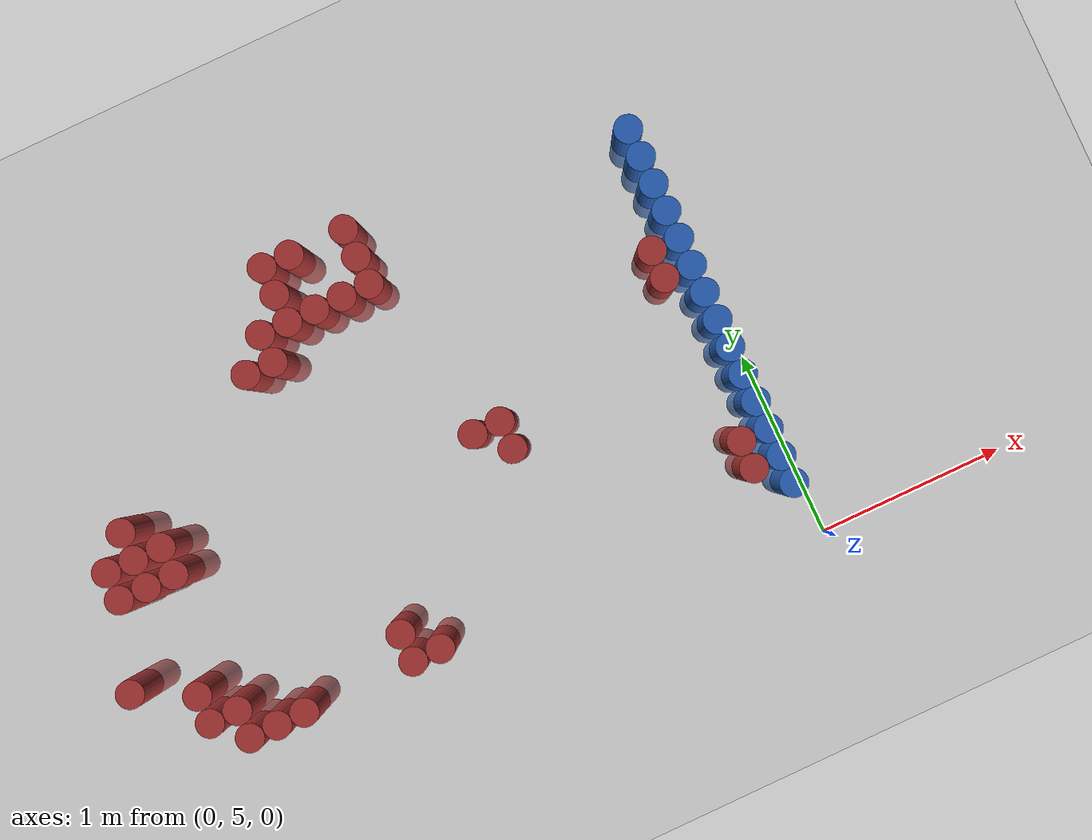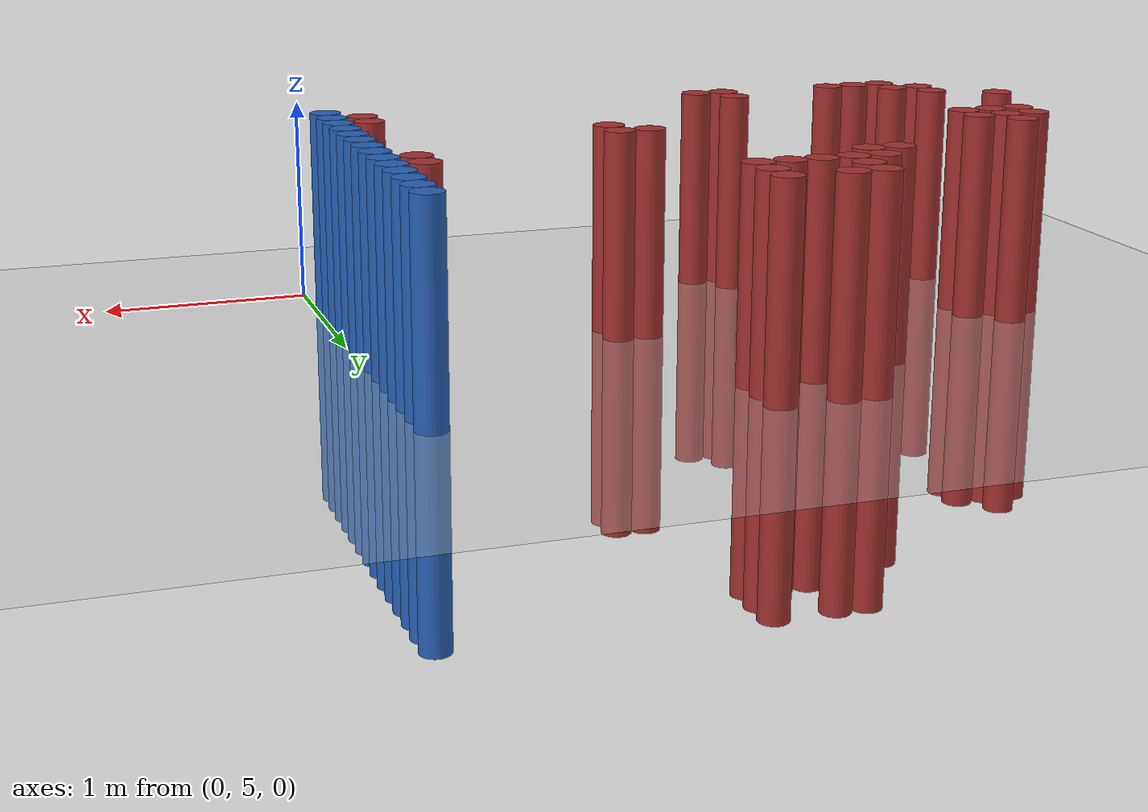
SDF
<sdf version="1.6">
 <world name="default">
  <model name="ground_plane">
   <static>1</static>
   <link name="link">
    <collision name="collision">
     <geometry><plane><normal>0 0 1</normal><size>100 100</size></plane></geometry>
     <surface><friction><ode><mu>100</mu><mu2>50</mu2></ode></friction></surface>
    </collision>
    <visual name="visual">
     <cast_shadows>0</cast_shadows>
     <geometry><plane><normal>0 0 1</normal><size>100 100</size></plane></geometry>
     <material>
      <script><uri>file://media/materials/scripts/gazebo.material</uri><name>Gazebo/Grey</name></script>
     </material>
    </visual>
   </link>
  </model>
  <model name="unit_cylinder_149">
   <static>1</static>
   <pose>-3.525000 5.775000 0.000000 0.000000 0.000000 0.000000</pose>
   <link name="link">
    <inertial>
     <mass>1</mass>
     <inertia><ixx>0.145833</ixx><ixy>0</ixy><ixz>0</ixz><iyy>0.145833</iyy><iyz>0</iyz><izz>0.125</izz></inertia>
    </inertial>
    <collision name="collision">
     <geometry><cylinder><radius>0.075000</radius><length>2</length></cylinder></geometry>
    </collision>
    <visual name="visual">
     <geometry><cylinder><radius>0.075000</radius><length>2</length></cylinder></geometry>
     <material>
      <ambient>0.648000 0.192000 0.192000 1</ambient>
      <diffuse>0.648000 0.192000 0.192000 1</diffuse>
     </material>
     <material>
      <script><name>Gazebo/Grey</name><uri>file://media/materials/scripts/gazebo.material</uri></script>
     </material>
    </visual>
   </link>
  </model>
  <model name="unit_cylinder_153">
   <static>1</static>
   <pose>-3.375000 6.225000 0.000000 0.000000 0.000000 0.000000</pose>
   <link name="link">
    <inertial>
     <mass>1</mass>
     <inertia><ixx>0.145833</ixx><ixy>0</ixy><ixz>0</ixz><iyy>0.145833</iyy><iyz>0</iyz><izz>0.125</izz></inertia>
    </inertial>
    <collision name="collision">
     <geometry><cylinder><radius>0.075000</radius><length>2</length></cylinder></geometry>
    </collision>
    <visual name="visual">
     <geometry><cylinder><radius>0.075000</radius><length>2</length></cylinder></geometry>
     <material>
      <ambient>0.648000 0.192000 0.192000 1</ambient>
      <diffuse>0.648000 0.192000 0.192000 1</diffuse>
     </material>
     <material>
      <script><name>Gazebo/Grey</name><uri>file://media/materials/scripts/gazebo.material</uri></script>
     </material>
    </visual>
   </link>
  </model>
  <model name="unit_cylinder_154">
   <static>1</static>
   <pose>-3.375000 6.375000 0.000000 0.000000 0.000000 0.000000</pose>
   <link name="link">
    <inertial>
     <mass>1</mass>
     <inertia><ixx>0.145833</ixx><ixy>0</ixy><ixz>0</ixz><iyy>0.145833</iyy><iyz>0</iyz><izz>0.125</izz></inertia>
    </inertial>
    <collision name="collision">
     <geometry><cylinder><radius>0.075000</radius><length>2</length></cylinder></geometry>
    </collision>
    <visual name="visual">
     <geometry><cylinder><radius>0.075000</radius><length>2</length></cylinder></geometry>
     <material>
      <ambient>0.648000 0.192000 0.192000 1</ambient>
      <diffuse>0.648000 0.192000 0.192000 1</diffuse>
     </material>
     <material>
      <script><name>Gazebo/Grey</name><uri>file://media/materials/scripts/gazebo.material</uri></script>
     </material>
    </visual>
   </link>
  </model>
  <model name="unit_cylinder_156">
   <static>1</static>
   <pose>-3.225000 5.475000 0.000000 0.000000 0.000000 0.000000</pose>
   <link name="link">
    <inertial>
     <mass>1</mass>
     <inertia><ixx>0.145833</ixx><ixy>0</ixy><ixz>0</ixz><iyy>0.145833</iyy><iyz>0</iyz><izz>0.125</izz></inertia>
    </inertial>
    <collision name="collision">
     <geometry><cylinder><radius>0.075000</radius><length>2</length></cylinder></geometry>
    </collision>
    <visual name="visual">
     <geometry><cylinder><radius>0.075000</radius><length>2</length></cylinder></geometry>
     <material>
      <ambient>0.648000 0.192000 0.192000 1</ambient>
      <diffuse>0.648000 0.192000 0.192000 1</diffuse>
     </material>
     <material>
      <script><name>Gazebo/Grey</name><uri>file://media/materials/scripts/gazebo.material</uri></script>
     </material>
    </visual>
   </link>
  </model>
  <model name="unit_cylinder_157">
   <static>1</static>
   <pose>-3.225000 5.625000 0.000000 0.000000 0.000000 0.000000</pose>
   <link name="link">
    <inertial>
     <mass>1</mass>
     <inertia><ixx>0.145833</ixx><ixy>0</ixy><ixz>0</ixz><iyy>0.145833</iyy><iyz>0</iyz><izz>0.125</izz></inertia>
    </inertial>
    <collision name="collision">
     <geometry><cylinder><radius>0.075000</radius><length>2</length></cylinder></geometry>
    </collision>
    <visual name="visual">
     <geometry><cylinder><radius>0.075000</radius><length>2</length></cylinder></geometry>
     <material>
      <ambient>0.648000 0.192000 0.192000 1</ambient>
      <diffuse>0.648000 0.192000 0.192000 1</diffuse>
     </material>
     <material>
      <script><name>Gazebo/Grey</name><uri>file://media/materials/scripts/gazebo.material</uri></script>
     </material>
    </visual>
   </link>
  </model>
  <model name="unit_cylinder_158">
   <static>1</static>
   <pose>-3.225000 6.225000 0.000000 0.000000 0.000000 0.000000</pose>
   <link name="link">
    <inertial>
     <mass>1</mass>
     <inertia><ixx>0.145833</ixx><ixy>0</ixy><ixz>0</ixz><iyy>0.145833</iyy><iyz>0</iyz><izz>0.125</izz></inertia>
    </inertial>
    <collision name="collision">
     <geometry><cylinder><radius>0.075000</radius><length>2</length></cylinder></geometry>
    </collision>
    <visual name="visual">
     <geometry><cylinder><radius>0.075000</radius><length>2</length></cylinder></geometry>
     <material>
      <ambient>0.648000 0.192000 0.192000 1</ambient>
      <diffuse>0.648000 0.192000 0.192000 1</diffuse>
     </material>
     <material>
      <script><name>Gazebo/Grey</name><uri>file://media/materials/scripts/gazebo.material</uri></script>
     </material>
    </visual>
   </link>
  </model>
  <model name="unit_cylinder_159">
   <static>1</static>
   <pose>-3.225000 6.375000 0.000000 0.000000 0.000000 0.000000</pose>
   <link name="link">
    <inertial>
     <mass>1</mass>
     <inertia><ixx>0.145833</ixx><ixy>0</ixy><ixz>0</ixz><iyy>0.145833</iyy><iyz>0</iyz><izz>0.125</izz></inertia>
    </inertial>
    <collision name="collision">
     <geometry><cylinder><radius>0.075000</radius><length>2</length></cylinder></geometry>
    </collision>
    <visual name="visual">
     <geometry><cylinder><radius>0.075000</radius><length>2</length></cylinder></geometry>
     <material>
      <ambient>0.648000 0.192000 0.192000 1</ambient>
      <diffuse>0.648000 0.192000 0.192000 1</diffuse>
     </material>
     <material>
      <script><name>Gazebo/Grey</name><uri>file://media/materials/scripts/gazebo.material</uri></script>
     </material>
    </visual>
   </link>
  </model>
  <model name="unit_cylinder_160">
   <static>1</static>
   <pose>-3.225000 6.525000 0.000000 0.000000 0.000000 0.000000</pose>
   <link name="link">
    <inertial>
     <mass>1</mass>
     <inertia><ixx>0.145833</ixx><ixy>0</ixy><ixz>0</ixz><iyy>0.145833</iyy><iyz>0</iyz><izz>0.125</izz></inertia>
    </inertial>
    <collision name="collision">
     <geometry><cylinder><radius>0.075000</radius><length>2</length></cylinder></geometry>
    </collision>
    <visual name="visual">
     <geometry><cylinder><radius>0.075000</radius><length>2</length></cylinder></geometry>
     <material>
      <ambient>0.648000 0.192000 0.192000 1</ambient>
      <diffuse>0.648000 0.192000 0.192000 1</diffuse>
     </material>
     <material>
      <script><name>Gazebo/Grey</name><uri>file://media/materials/scripts/gazebo.material</uri></script>
     </material>
    </visual>
   </link>
  </model>
  <model name="unit_cylinder_162">
   <static>1</static>
   <pose>-3.075000 5.325000 0.000000 0.000000 0.000000 0.000000</pose>
   <link name="link">
    <inertial>
     <mass>1</mass>
     <inertia><ixx>0.145833</ixx><ixy>0</ixy><ixz>0</ixz><iyy>0.145833</iyy><iyz>0</iyz><izz>0.125</izz></inertia>
    </inertial>
    <collision name="collision">
     <geometry><cylinder><radius>0.075000</radius><length>2</length></cylinder></geometry>
    </collision>
    <visual name="visual">
     <geometry><cylinder><radius>0.075000</radius><length>2</length></cylinder></geometry>
     <material>
      <ambient>0.648000 0.192000 0.192000 1</ambient>
      <diffuse>0.648000 0.192000 0.192000 1</diffuse>
     </material>
     <material>
      <script><name>Gazebo/Grey</name><uri>file://media/materials/scripts/gazebo.material</uri></script>
     </material>
    </visual>
   </link>
  </model>
  <model name="unit_cylinder_163">
   <static>1</static>
   <pose>-3.075000 5.475000 0.000000 0.000000 0.000000 0.000000</pose>
   <link name="link">
    <inertial>
     <mass>1</mass>
     <inertia><ixx>0.145833</ixx><ixy>0</ixy><ixz>0</ixz><iyy>0.145833</iyy><iyz>0</iyz><izz>0.125</izz></inertia>
    </inertial>
    <collision name="collision">
     <geometry><cylinder><radius>0.075000</radius><length>2</length></cylinder></geometry>
    </collision>
    <visual name="visual">
     <geometry><cylinder><radius>0.075000</radius><length>2</length></cylinder></geometry>
     <material>
      <ambient>0.648000 0.192000 0.192000 1</ambient>
      <diffuse>0.648000 0.192000 0.192000 1</diffuse>
     </material>
     <material>
      <script><name>Gazebo/Grey</name><uri>file://media/materials/scripts/gazebo.material</uri></script>
     </material>
    </visual>
   </link>
  </model>
  <model name="unit_cylinder_164">
   <static>1</static>
   <pose>-3.075000 6.225000 0.000000 0.000000 0.000000 0.000000</pose>
   <link name="link">
    <inertial>
     <mass>1</mass>
     <inertia><ixx>0.145833</ixx><ixy>0</ixy><ixz>0</ixz><iyy>0.145833</iyy><iyz>0</iyz><izz>0.125</izz></inertia>
    </inertial>
    <collision name="collision">
     <geometry><cylinder><radius>0.075000</radius><length>2</length></cylinder></geometry>
    </collision>
    <visual name="visual">
     <geometry><cylinder><radius>0.075000</radius><length>2</length></cylinder></geometry>
     <material>
      <ambient>0.648000 0.192000 0.192000 1</ambient>
      <diffuse>0.648000 0.192000 0.192000 1</diffuse>
     </material>
     <material>
      <script><name>Gazebo/Grey</name><uri>file://media/materials/scripts/gazebo.material</uri></script>
     </material>
    </visual>
   </link>
  </model>
  <model name="unit_cylinder_165">
   <static>1</static>
   <pose>-3.075000 6.375000 0.000000 0.000000 0.000000 0.000000</pose>
   <link name="link">
    <inertial>
     <mass>1</mass>
     <inertia><ixx>0.145833</ixx><ixy>0</ixy><ixz>0</ixz><iyy>0.145833</iyy><iyz>0</iyz><izz>0.125</izz></inertia>
    </inertial>
    <collision name="collision">
     <geometry><cylinder><radius>0.075000</radius><length>2</length></cylinder></geometry>
    </collision>
    <visual name="visual">
     <geometry><cylinder><radius>0.075000</radius><length>2</length></cylinder></geometry>
     <material>
      <ambient>0.648000 0.192000 0.192000 1</ambient>
      <diffuse>0.648000 0.192000 0.192000 1</diffuse>
     </material>
     <material>
      <script><name>Gazebo/Grey</name><uri>file://media/materials/scripts/gazebo.material</uri></script>
     </material>
    </visual>
   </link>
  </model>
  <model name="unit_cylinder_169">
   <static>1</static>
   <pose>-2.925000 5.325000 0.000000 0.000000 0.000000 0.000000</pose>
   <link name="link">
    <inertial>
     <mass>1</mass>
     <inertia><ixx>0.145833</ixx><ixy>0</ixy><ixz>0</ixz><iyy>0.145833</iyy><iyz>0</iyz><izz>0.125</izz></inertia>
    </inertial>
    <collision name="collision">
     <geometry><cylinder><radius>0.075000</radius><length>2</length></cylinder></geometry>
    </collision>
    <visual name="visual">
     <geometry><cylinder><radius>0.075000</radius><length>2</length></cylinder></geometry>
     <material>
      <ambient>0.648000 0.192000 0.192000 1</ambient>
      <diffuse>0.648000 0.192000 0.192000 1</diffuse>
     </material>
     <material>
      <script><name>Gazebo/Grey</name><uri>file://media/materials/scripts/gazebo.material</uri></script>
     </material>
    </visual>
   </link>
  </model>
  <model name="unit_cylinder_172">
   <static>1</static>
   <pose>-2.775000 5.325000 0.000000 0.000000 0.000000 0.000000</pose>
   <link name="link">
    <inertial>
     <mass>1</mass>
     <inertia><ixx>0.145833</ixx><ixy>0</ixy><ixz>0</ixz><iyy>0.145833</iyy><iyz>0</iyz><izz>0.125</izz></inertia>
    </inertial>
    <collision name="collision">
     <geometry><cylinder><radius>0.075000</radius><length>2</length></cylinder></geometry>
    </collision>
    <visual name="visual">
     <geometry><cylinder><radius>0.075000</radius><length>2</length></cylinder></geometry>
     <material>
      <ambient>0.648000 0.192000 0.192000 1</ambient>
      <diffuse>0.648000 0.192000 0.192000 1</diffuse>
     </material>
     <material>
      <script><name>Gazebo/Grey</name><uri>file://media/materials/scripts/gazebo.material</uri></script>
     </material>
    </visual>
   </link>
  </model>
  <model name="unit_cylinder_177">
   <static>1</static>
   <pose>-2.325000 6.975000 0.000000 0.000000 0.000000 0.000000</pose>
   <link name="link">
    <inertial>
     <mass>1</mass>
     <inertia><ixx>0.145833</ixx><ixy>0</ixy><ixz>0</ixz><iyy>0.145833</iyy><iyz>0</iyz><izz>0.125</izz></inertia>
    </inertial>
    <collision name="collision">
     <geometry><cylinder><radius>0.075000</radius><length>2</length></cylinder></geometry>
    </collision>
    <visual name="visual">
     <geometry><cylinder><radius>0.075000</radius><length>2</length></cylinder></geometry>
     <material>
      <ambient>0.648000 0.192000 0.192000 1</ambient>
      <diffuse>0.648000 0.192000 0.192000 1</diffuse>
     </material>
     <material>
      <script><name>Gazebo/Grey</name><uri>file://media/materials/scripts/gazebo.material</uri></script>
     </material>
    </visual>
   </link>
  </model>
  <model name="unit_cylinder_180">
   <static>1</static>
   <pose>-2.175000 5.325000 0.000000 0.000000 0.000000 0.000000</pose>
   <link name="link">
    <inertial>
     <mass>1</mass>
     <inertia><ixx>0.145833</ixx><ixy>0</ixy><ixz>0</ixz><iyy>0.145833</iyy><iyz>0</iyz><izz>0.125</izz></inertia>
    </inertial>
    <collision name="collision">
     <geometry><cylinder><radius>0.075000</radius><length>2</length></cylinder></geometry>
    </collision>
    <visual name="visual">
     <geometry><cylinder><radius>0.075000</radius><length>2</length></cylinder></geometry>
     <material>
      <ambient>0.648000 0.192000 0.192000 1</ambient>
      <diffuse>0.648000 0.192000 0.192000 1</diffuse>
     </material>
     <material>
      <script><name>Gazebo/Grey</name><uri>file://media/materials/scripts/gazebo.material</uri></script>
     </material>
    </visual>
   </link>
  </model>
  <model name="unit_cylinder_181">
   <static>1</static>
   <pose>-2.175000 5.475000 0.000000 0.000000 0.000000 0.000000</pose>
   <link name="link">
    <inertial>
     <mass>1</mass>
     <inertia><ixx>0.145833</ixx><ixy>0</ixy><ixz>0</ixz><iyy>0.145833</iyy><iyz>0</iyz><izz>0.125</izz></inertia>
    </inertial>
    <collision name="collision">
     <geometry><cylinder><radius>0.075000</radius><length>2</length></cylinder></geometry>
    </collision>
    <visual name="visual">
     <geometry><cylinder><radius>0.075000</radius><length>2</length></cylinder></geometry>
     <material>
      <ambient>0.648000 0.192000 0.192000 1</ambient>
      <diffuse>0.648000 0.192000 0.192000 1</diffuse>
     </material>
     <material>
      <script><name>Gazebo/Grey</name><uri>file://media/materials/scripts/gazebo.material</uri></script>
     </material>
    </visual>
   </link>
  </model>
  <model name="unit_cylinder_182">
   <static>1</static>
   <pose>-2.175000 6.975000 0.000000 0.000000 0.000000 0.000000</pose>
   <link name="link">
    <inertial>
     <mass>1</mass>
     <inertia><ixx>0.145833</ixx><ixy>0</ixy><ixz>0</ixz><iyy>0.145833</iyy><iyz>0</iyz><izz>0.125</izz></inertia>
    </inertial>
    <collision name="collision">
     <geometry><cylinder><radius>0.075000</radius><length>2</length></cylinder></geometry>
    </collision>
    <visual name="visual">
     <geometry><cylinder><radius>0.075000</radius><length>2</length></cylinder></geometry>
     <material>
      <ambient>0.648000 0.192000 0.192000 1</ambient>
      <diffuse>0.648000 0.192000 0.192000 1</diffuse>
     </material>
     <material>
      <script><name>Gazebo/Grey</name><uri>file://media/materials/scripts/gazebo.material</uri></script>
     </material>
    </visual>
   </link>
  </model>
  <model name="unit_cylinder_183">
   <static>1</static>
   <pose>-2.175000 7.125000 0.000000 0.000000 0.000000 0.000000</pose>
   <link name="link">
    <inertial>
     <mass>1</mass>
     <inertia><ixx>0.145833</ixx><ixy>0</ixy><ixz>0</ixz><iyy>0.145833</iyy><iyz>0</iyz><izz>0.125</izz></inertia>
    </inertial>
    <collision name="collision">
     <geometry><cylinder><radius>0.075000</radius><length>2</length></cylinder></geometry>
    </collision>
    <visual name="visual">
     <geometry><cylinder><radius>0.075000</radius><length>2</length></cylinder></geometry>
     <material>
      <ambient>0.648000 0.192000 0.192000 1</ambient>
      <diffuse>0.648000 0.192000 0.192000 1</diffuse>
     </material>
     <material>
      <script><name>Gazebo/Grey</name><uri>file://media/materials/scripts/gazebo.material</uri></script>
     </material>
    </visual>
   </link>
  </model>
  <model name="unit_cylinder_184">
   <static>1</static>
   <pose>-2.025000 5.325000 0.000000 0.000000 0.000000 0.000000</pose>
   <link name="link">
    <inertial>
     <mass>1</mass>
     <inertia><ixx>0.145833</ixx><ixy>0</ixy><ixz>0</ixz><iyy>0.145833</iyy><iyz>0</iyz><izz>0.125</izz></inertia>
    </inertial>
    <collision name="collision">
     <geometry><cylinder><radius>0.075000</radius><length>2</length></cylinder></geometry>
    </collision>
    <visual name="visual">
     <geometry><cylinder><radius>0.075000</radius><length>2</length></cylinder></geometry>
     <material>
      <ambient>0.648000 0.192000 0.192000 1</ambient>
      <diffuse>0.648000 0.192000 0.192000 1</diffuse>
     </material>
     <material>
      <script><name>Gazebo/Grey</name><uri>file://media/materials/scripts/gazebo.material</uri></script>
     </material>
    </visual>
   </link>
  </model>
  <model name="unit_cylinder_185">
   <static>1</static>
   <pose>-2.025000 7.125000 0.000000 0.000000 0.000000 0.000000</pose>
   <link name="link">
    <inertial>
     <mass>1</mass>
     <inertia><ixx>0.145833</ixx><ixy>0</ixy><ixz>0</ixz><iyy>0.145833</iyy><iyz>0</iyz><izz>0.125</izz></inertia>
    </inertial>
    <collision name="collision">
     <geometry><cylinder><radius>0.075000</radius><length>2</length></cylinder></geometry>
    </collision>
    <visual name="visual">
     <geometry><cylinder><radius>0.075000</radius><length>2</length></cylinder></geometry>
     <material>
      <ambient>0.648000 0.192000 0.192000 1</ambient>
      <diffuse>0.648000 0.192000 0.192000 1</diffuse>
     </material>
     <material>
      <script><name>Gazebo/Grey</name><uri>file://media/materials/scripts/gazebo.material</uri></script>
     </material>
    </visual>
   </link>
  </model>
  <model name="unit_cylinder_186">
   <static>1</static>
   <pose>-2.025000 7.275000 0.000000 0.000000 0.000000 0.000000</pose>
   <link name="link">
    <inertial>
     <mass>1</mass>
     <inertia><ixx>0.145833</ixx><ixy>0</ixy><ixz>0</ixz><iyy>0.145833</iyy><iyz>0</iyz><izz>0.125</izz></inertia>
    </inertial>
    <collision name="collision">
     <geometry><cylinder><radius>0.075000</radius><length>2</length></cylinder></geometry>
    </collision>
    <visual name="visual">
     <geometry><cylinder><radius>0.075000</radius><length>2</length></cylinder></geometry>
     <material>
      <ambient>0.648000 0.192000 0.192000 1</ambient>
      <diffuse>0.648000 0.192000 0.192000 1</diffuse>
     </material>
     <material>
      <script><name>Gazebo/Grey</name><uri>file://media/materials/scripts/gazebo.material</uri></script>
     </material>
    </visual>
   </link>
  </model>
  <model name="unit_cylinder_187">
   <static>1</static>
   <pose>-2.025000 7.425000 0.000000 0.000000 0.000000 0.000000</pose>
   <link name="link">
    <inertial>
     <mass>1</mass>
     <inertia><ixx>0.145833</ixx><ixy>0</ixy><ixz>0</ixz><iyy>0.145833</iyy><iyz>0</iyz><izz>0.125</izz></inertia>
    </inertial>
    <collision name="collision">
     <geometry><cylinder><radius>0.075000</radius><length>2</length></cylinder></geometry>
    </collision>
    <visual name="visual">
     <geometry><cylinder><radius>0.075000</radius><length>2</length></cylinder></geometry>
     <material>
      <ambient>0.648000 0.192000 0.192000 1</ambient>
      <diffuse>0.648000 0.192000 0.192000 1</diffuse>
     </material>
     <material>
      <script><name>Gazebo/Grey</name><uri>file://media/materials/scripts/gazebo.material</uri></script>
     </material>
    </visual>
   </link>
  </model>
  <model name="unit_cylinder_189">
   <static>1</static>
   <pose>-1.875000 7.125000 0.000000 0.000000 0.000000 0.000000</pose>
   <link name="link">
    <inertial>
     <mass>1</mass>
     <inertia><ixx>0.145833</ixx><ixy>0</ixy><ixz>0</ixz><iyy>0.145833</iyy><iyz>0</iyz><izz>0.125</izz></inertia>
    </inertial>
    <collision name="collision">
     <geometry><cylinder><radius>0.075000</radius><length>2</length></cylinder></geometry>
    </collision>
    <visual name="visual">
     <geometry><cylinder><radius>0.075000</radius><length>2</length></cylinder></geometry>
     <material>
      <ambient>0.648000 0.192000 0.192000 1</ambient>
      <diffuse>0.648000 0.192000 0.192000 1</diffuse>
     </material>
     <material>
      <script><name>Gazebo/Grey</name><uri>file://media/materials/scripts/gazebo.material</uri></script>
     </material>
    </visual>
   </link>
  </model>
  <model name="unit_cylinder_190">
   <static>1</static>
   <pose>-1.875000 7.425000 0.000000 0.000000 0.000000 0.000000</pose>
   <link name="link">
    <inertial>
     <mass>1</mass>
     <inertia><ixx>0.145833</ixx><ixy>0</ixy><ixz>0</ixz><iyy>0.145833</iyy><iyz>0</iyz><izz>0.125</izz></inertia>
    </inertial>
    <collision name="collision">
     <geometry><cylinder><radius>0.075000</radius><length>2</length></cylinder></geometry>
    </collision>
    <visual name="visual">
     <geometry><cylinder><radius>0.075000</radius><length>2</length></cylinder></geometry>
     <material>
      <ambient>0.648000 0.192000 0.192000 1</ambient>
      <diffuse>0.648000 0.192000 0.192000 1</diffuse>
     </material>
     <material>
      <script><name>Gazebo/Grey</name><uri>file://media/materials/scripts/gazebo.material</uri></script>
     </material>
    </visual>
   </link>
  </model>
  <model name="unit_cylinder_196">
   <static>1</static>
   <pose>-1.725000 7.125000 0.000000 0.000000 0.000000 0.000000</pose>
   <link name="link">
    <inertial>
     <mass>1</mass>
     <inertia><ixx>0.145833</ixx><ixy>0</ixy><ixz>0</ixz><iyy>0.145833</iyy><iyz>0</iyz><izz>0.125</izz></inertia>
    </inertial>
    <collision name="collision">
     <geometry><cylinder><radius>0.075000</radius><length>2</length></cylinder></geometry>
    </collision>
    <visual name="visual">
     <geometry><cylinder><radius>0.075000</radius><length>2</length></cylinder></geometry>
     <material>
      <ambient>0.648000 0.192000 0.192000 1</ambient>
      <diffuse>0.648000 0.192000 0.192000 1</diffuse>
     </material>
     <material>
      <script><name>Gazebo/Grey</name><uri>file://media/materials/scripts/gazebo.material</uri></script>
     </material>
    </visual>
   </link>
  </model>
  <model name="unit_cylinder_199">
   <static>1</static>
   <pose>-1.575000 7.125000 0.000000 0.000000 0.000000 0.000000</pose>
   <link name="link">
    <inertial>
     <mass>1</mass>
     <inertia><ixx>0.145833</ixx><ixy>0</ixy><ixz>0</ixz><iyy>0.145833</iyy><iyz>0</iyz><izz>0.125</izz></inertia>
    </inertial>
    <collision name="collision">
     <geometry><cylinder><radius>0.075000</radius><length>2</length></cylinder></geometry>
    </collision>
    <visual name="visual">
     <geometry><cylinder><radius>0.075000</radius><length>2</length></cylinder></geometry>
     <material>
      <ambient>0.648000 0.192000 0.192000 1</ambient>
      <diffuse>0.648000 0.192000 0.192000 1</diffuse>
     </material>
     <material>
      <script><name>Gazebo/Grey</name><uri>file://media/materials/scripts/gazebo.material</uri></script>
     </material>
    </visual>
   </link>
  </model>
  <model name="unit_cylinder_200">
   <static>1</static>
   <pose>-1.575000 7.275000 0.000000 0.000000 0.000000 0.000000</pose>
   <link name="link">
    <inertial>
     <mass>1</mass>
     <inertia><ixx>0.145833</ixx><ixy>0</ixy><ixz>0</ixz><iyy>0.145833</iyy><iyz>0</iyz><izz>0.125</izz></inertia>
    </inertial>
    <collision name="collision">
     <geometry><cylinder><radius>0.075000</radius><length>2</length></cylinder></geometry>
    </collision>
    <visual name="visual">
     <geometry><cylinder><radius>0.075000</radius><length>2</length></cylinder></geometry>
     <material>
      <ambient>0.648000 0.192000 0.192000 1</ambient>
      <diffuse>0.648000 0.192000 0.192000 1</diffuse>
     </material>
     <material>
      <script><name>Gazebo/Grey</name><uri>file://media/materials/scripts/gazebo.material</uri></script>
     </material>
    </visual>
   </link>
  </model>
  <model name="unit_cylinder_201">
   <static>1</static>
   <pose>-1.575000 7.425000 0.000000 0.000000 0.000000 0.000000</pose>
   <link name="link">
    <inertial>
     <mass>1</mass>
     <inertia><ixx>0.145833</ixx><ixy>0</ixy><ixz>0</ixz><iyy>0.145833</iyy><iyz>0</iyz><izz>0.125</izz></inertia>
    </inertial>
    <collision name="collision">
     <geometry><cylinder><radius>0.075000</radius><length>2</length></cylinder></geometry>
    </collision>
    <visual name="visual">
     <geometry><cylinder><radius>0.075000</radius><length>2</length></cylinder></geometry>
     <material>
      <ambient>0.648000 0.192000 0.192000 1</ambient>
      <diffuse>0.648000 0.192000 0.192000 1</diffuse>
     </material>
     <material>
      <script><name>Gazebo/Grey</name><uri>file://media/materials/scripts/gazebo.material</uri></script>
     </material>
    </visual>
   </link>
  </model>
  <model name="unit_cylinder_204">
   <static>1</static>
   <pose>-1.425000 6.225000 0.000000 0.000000 0.000000 0.000000</pose>
   <link name="link">
    <inertial>
     <mass>1</mass>
     <inertia><ixx>0.145833</ixx><ixy>0</ixy><ixz>0</ixz><iyy>0.145833</iyy><iyz>0</iyz><izz>0.125</izz></inertia>
    </inertial>
    <collision name="collision">
     <geometry><cylinder><radius>0.075000</radius><length>2</length></cylinder></geometry>
    </collision>
    <visual name="visual">
     <geometry><cylinder><radius>0.075000</radius><length>2</length></cylinder></geometry>
     <material>
      <ambient>0.648000 0.192000 0.192000 1</ambient>
      <diffuse>0.648000 0.192000 0.192000 1</diffuse>
     </material>
     <material>
      <script><name>Gazebo/Grey</name><uri>file://media/materials/scripts/gazebo.material</uri></script>
     </material>
    </visual>
   </link>
  </model>
  <model name="unit_cylinder_207">
   <static>1</static>
   <pose>-1.275000 6.075000 0.000000 0.000000 0.000000 0.000000</pose>
   <link name="link">
    <inertial>
     <mass>1</mass>
     <inertia><ixx>0.145833</ixx><ixy>0</ixy><ixz>0</ixz><iyy>0.145833</iyy><iyz>0</iyz><izz>0.125</izz></inertia>
    </inertial>
    <collision name="collision">
     <geometry><cylinder><radius>0.075000</radius><length>2</length></cylinder></geometry>
    </collision>
    <visual name="visual">
     <geometry><cylinder><radius>0.075000</radius><length>2</length></cylinder></geometry>
     <material>
      <ambient>0.648000 0.192000 0.192000 1</ambient>
      <diffuse>0.648000 0.192000 0.192000 1</diffuse>
     </material>
     <material>
      <script><name>Gazebo/Grey</name><uri>file://media/materials/scripts/gazebo.material</uri></script>
     </material>
    </visual>
   </link>
  </model>
  <model name="unit_cylinder_208">
   <static>1</static>
   <pose>-1.275000 6.225000 0.000000 0.000000 0.000000 0.000000</pose>
   <link name="link">
    <inertial>
     <mass>1</mass>
     <inertia><ixx>0.145833</ixx><ixy>0</ixy><ixz>0</ixz><iyy>0.145833</iyy><iyz>0</iyz><izz>0.125</izz></inertia>
    </inertial>
    <collision name="collision">
     <geometry><cylinder><radius>0.075000</radius><length>2</length></cylinder></geometry>
    </collision>
    <visual name="visual">
     <geometry><cylinder><radius>0.075000</radius><length>2</length></cylinder></geometry>
     <material>
      <ambient>0.648000 0.192000 0.192000 1</ambient>
      <diffuse>0.648000 0.192000 0.192000 1</diffuse>
     </material>
     <material>
      <script><name>Gazebo/Grey</name><uri>file://media/materials/scripts/gazebo.material</uri></script>
     </material>
    </visual>
   </link>
  </model>
  <model name="unit_cylinder_213">
   <static>1</static>
   <pose>-0.225000 5.475000 0.000000 0.000000 0.000000 0.000000</pose>
   <link name="link">
    <inertial>
     <mass>1</mass>
     <inertia><ixx>0.145833</ixx><ixy>0</ixy><ixz>0</ixz><iyy>0.145833</iyy><iyz>0</iyz><izz>0.125</izz></inertia>
    </inertial>
    <collision name="collision">
     <geometry><cylinder><radius>0.075000</radius><length>2</length></cylinder></geometry>
    </collision>
    <visual name="visual">
     <geometry><cylinder><radius>0.075000</radius><length>2</length></cylinder></geometry>
     <material>
      <ambient>0.648000 0.192000 0.192000 1</ambient>
      <diffuse>0.648000 0.192000 0.192000 1</diffuse>
     </material>
     <material>
      <script><name>Gazebo/Grey</name><uri>file://media/materials/scripts/gazebo.material</uri></script>
     </material>
    </visual>
   </link>
  </model>
  <model name="unit_cylinder_214">
   <static>1</static>
   <pose>-0.225000 5.625000 0.000000 0.000000 0.000000 0.000000</pose>
   <link name="link">
    <inertial>
     <mass>1</mass>
     <inertia><ixx>0.145833</ixx><ixy>0</ixy><ixz>0</ixz><iyy>0.145833</iyy><iyz>0</iyz><izz>0.125</izz></inertia>
    </inertial>
    <collision name="collision">
     <geometry><cylinder><radius>0.075000</radius><length>2</length></cylinder></geometry>
    </collision>
    <visual name="visual">
     <geometry><cylinder><radius>0.075000</radius><length>2</length></cylinder></geometry>
     <material>
      <ambient>0.648000 0.192000 0.192000 1</ambient>
      <diffuse>0.648000 0.192000 0.192000 1</diffuse>
     </material>
     <material>
      <script><name>Gazebo/Grey</name><uri>file://media/materials/scripts/gazebo.material</uri></script>
     </material>
    </visual>
   </link>
  </model>
  <model name="unit_cylinder_215">
   <static>1</static>
   <pose>-0.225000 6.525000 0.000000 0.000000 0.000000 0.000000</pose>
   <link name="link">
    <inertial>
     <mass>1</mass>
     <inertia><ixx>0.145833</ixx><ixy>0</ixy><ixz>0</ixz><iyy>0.145833</iyy><iyz>0</iyz><izz>0.125</izz></inertia>
    </inertial>
    <collision name="collision">
     <geometry><cylinder><radius>0.075000</radius><length>2</length></cylinder></geometry>
    </collision>
    <visual name="visual">
     <geometry><cylinder><radius>0.075000</radius><length>2</length></cylinder></geometry>
     <material>
      <ambient>0.648000 0.192000 0.192000 1</ambient>
      <diffuse>0.648000 0.192000 0.192000 1</diffuse>
     </material>
     <material>
      <script><name>Gazebo/Grey</name><uri>file://media/materials/scripts/gazebo.material</uri></script>
     </material>
    </visual>
   </link>
  </model>
  <model name="unit_cylinder_216">
   <static>1</static>
   <pose>-0.225000 6.675000 0.000000 0.000000 0.000000 0.000000</pose>
   <link name="link">
    <inertial>
     <mass>1</mass>
     <inertia><ixx>0.145833</ixx><ixy>0</ixy><ixz>0</ixz><iyy>0.145833</iyy><iyz>0</iyz><izz>0.125</izz></inertia>
    </inertial>
    <collision name="collision">
     <geometry><cylinder><radius>0.075000</radius><length>2</length></cylinder></geometry>
    </collision>
    <visual name="visual">
     <geometry><cylinder><radius>0.075000</radius><length>2</length></cylinder></geometry>
     <material>
      <ambient>0.648000 0.192000 0.192000 1</ambient>
      <diffuse>0.648000 0.192000 0.192000 1</diffuse>
     </material>
     <material>
      <script><name>Gazebo/Grey</name><uri>file://media/materials/scripts/gazebo.material</uri></script>
     </material>
    </visual>
   </link>
  </model>
  <model name="unit_cylinder_225">
   <static>1</static>
   <pose>-0.075000 5.325000 0.000000 0.000000 0.000000 0.000000</pose>
   <link name="link">
    <inertial>
     <mass>1</mass>
     <inertia><ixx>0.145833</ixx><ixy>0</ixy><ixz>0</ixz><iyy>0.145833</iyy><iyz>0</iyz><izz>0.125</izz></inertia>
    </inertial>
    <collision name="collision">
     <geometry><cylinder><radius>0.075000</radius><length>2</length></cylinder></geometry>
    </collision>
    <visual name="visual">
     <geometry><cylinder><radius>0.075000</radius><length>2</length></cylinder></geometry>
     <material>
      <ambient>0.152000 0.379000 0.720000 1</ambient>
      <diffuse>0.152000 0.379000 0.720000 1</diffuse>
     </material>
     <material>
      <script><name>Gazebo/Grey</name><uri>file://media/materials/scripts/gazebo.material</uri></script>
     </material>
    </visual>
   </link>
  </model>
  <model name="unit_cylinder_226">
   <static>1</static>
   <pose>-0.075000 5.475000 0.000000 0.000000 0.000000 0.000000</pose>
   <link name="link">
    <inertial>
     <mass>1</mass>
     <inertia><ixx>0.145833</ixx><ixy>0</ixy><ixz>0</ixz><iyy>0.145833</iyy><iyz>0</iyz><izz>0.125</izz></inertia>
    </inertial>
    <collision name="collision">
     <geometry><cylinder><radius>0.075000</radius><length>2</length></cylinder></geometry>
    </collision>
    <visual name="visual">
     <geometry><cylinder><radius>0.075000</radius><length>2</length></cylinder></geometry>
     <material>
      <ambient>0.152000 0.379000 0.720000 1</ambient>
      <diffuse>0.152000 0.379000 0.720000 1</diffuse>
     </material>
     <material>
      <script><name>Gazebo/Grey</name><uri>file://media/materials/scripts/gazebo.material</uri></script>
     </material>
    </visual>
   </link>
  </model>
  <model name="unit_cylinder_227">
   <static>1</static>
   <pose>-0.075000 5.625000 0.000000 0.000000 0.000000 0.000000</pose>
   <link name="link">
    <inertial>
     <mass>1</mass>
     <inertia><ixx>0.145833</ixx><ixy>0</ixy><ixz>0</ixz><iyy>0.145833</iyy><iyz>0</iyz><izz>0.125</izz></inertia>
    </inertial>
    <collision name="collision">
     <geometry><cylinder><radius>0.075000</radius><length>2</length></cylinder></geometry>
    </collision>
    <visual name="visual">
     <geometry><cylinder><radius>0.075000</radius><length>2</length></cylinder></geometry>
     <material>
      <ambient>0.152000 0.379000 0.720000 1</ambient>
      <diffuse>0.152000 0.379000 0.720000 1</diffuse>
     </material>
     <material>
      <script><name>Gazebo/Grey</name><uri>file://media/materials/scripts/gazebo.material</uri></script>
     </material>
    </visual>
   </link>
  </model>
  <model name="unit_cylinder_228">
   <static>1</static>
   <pose>-0.075000 5.775000 0.000000 0.000000 0.000000 0.000000</pose>
   <link name="link">
    <inertial>
     <mass>1</mass>
     <inertia><ixx>0.145833</ixx><ixy>0</ixy><ixz>0</ixz><iyy>0.145833</iyy><iyz>0</iyz><izz>0.125</izz></inertia>
    </inertial>
    <collision name="collision">
     <geometry><cylinder><radius>0.075000</radius><length>2</length></cylinder></geometry>
    </collision>
    <visual name="visual">
     <geometry><cylinder><radius>0.075000</radius><length>2</length></cylinder></geometry>
     <material>
      <ambient>0.152000 0.379000 0.720000 1</ambient>
      <diffuse>0.152000 0.379000 0.720000 1</diffuse>
     </material>
     <material>
      <script><name>Gazebo/Grey</name><uri>file://media/materials/scripts/gazebo.material</uri></script>
     </material>
    </visual>
   </link>
  </model>
  <model name="unit_cylinder_229">
   <static>1</static>
   <pose>-0.075000 5.925000 0.000000 0.000000 0.000000 0.000000</pose>
   <link name="link">
    <inertial>
     <mass>1</mass>
     <inertia><ixx>0.145833</ixx><ixy>0</ixy><ixz>0</ixz><iyy>0.145833</iyy><iyz>0</iyz><izz>0.125</izz></inertia>
    </inertial>
    <collision name="collision">
     <geometry><cylinder><radius>0.075000</radius><length>2</length></cylinder></geometry>
    </collision>
    <visual name="visual">
     <geometry><cylinder><radius>0.075000</radius><length>2</length></cylinder></geometry>
     <material>
      <ambient>0.152000 0.379000 0.720000 1</ambient>
      <diffuse>0.152000 0.379000 0.720000 1</diffuse>
     </material>
     <material>
      <script><name>Gazebo/Grey</name><uri>file://media/materials/scripts/gazebo.material</uri></script>
     </material>
    </visual>
   </link>
  </model>
  <model name="unit_cylinder_230">
   <static>1</static>
   <pose>-0.075000 6.075000 0.000000 0.000000 0.000000 0.000000</pose>
   <link name="link">
    <inertial>
     <mass>1</mass>
     <inertia><ixx>0.145833</ixx><ixy>0</ixy><ixz>0</ixz><iyy>0.145833</iyy><iyz>0</iyz><izz>0.125</izz></inertia>
    </inertial>
    <collision name="collision">
     <geometry><cylinder><radius>0.075000</radius><length>2</length></cylinder></geometry>
    </collision>
    <visual name="visual">
     <geometry><cylinder><radius>0.075000</radius><length>2</length></cylinder></geometry>
     <material>
      <ambient>0.152000 0.379000 0.720000 1</ambient>
      <diffuse>0.152000 0.379000 0.720000 1</diffuse>
     </material>
     <material>
      <script><name>Gazebo/Grey</name><uri>file://media/materials/scripts/gazebo.material</uri></script>
     </material>
    </visual>
   </link>
  </model>
  <model name="unit_cylinder_231">
   <static>1</static>
   <pose>-0.075000 6.225000 0.000000 0.000000 0.000000 0.000000</pose>
   <link name="link">
    <inertial>
     <mass>1</mass>
     <inertia><ixx>0.145833</ixx><ixy>0</ixy><ixz>0</ixz><iyy>0.145833</iyy><iyz>0</iyz><izz>0.125</izz></inertia>
    </inertial>
    <collision name="collision">
     <geometry><cylinder><radius>0.075000</radius><length>2</length></cylinder></geometry>
    </collision>
    <visual name="visual">
     <geometry><cylinder><radius>0.075000</radius><length>2</length></cylinder></geometry>
     <material>
      <ambient>0.152000 0.379000 0.720000 1</ambient>
      <diffuse>0.152000 0.379000 0.720000 1</diffuse>
     </material>
     <material>
      <script><name>Gazebo/Grey</name><uri>file://media/materials/scripts/gazebo.material</uri></script>
     </material>
    </visual>
   </link>
  </model>
  <model name="unit_cylinder_232">
   <static>1</static>
   <pose>-0.075000 6.375000 0.000000 0.000000 0.000000 0.000000</pose>
   <link name="link">
    <inertial>
     <mass>1</mass>
     <inertia><ixx>0.145833</ixx><ixy>0</ixy><ixz>0</ixz><iyy>0.145833</iyy><iyz>0</iyz><izz>0.125</izz></inertia>
    </inertial>
    <collision name="collision">
     <geometry><cylinder><radius>0.075000</radius><length>2</length></cylinder></geometry>
    </collision>
    <visual name="visual">
     <geometry><cylinder><radius>0.075000</radius><length>2</length></cylinder></geometry>
     <material>
      <ambient>0.152000 0.379000 0.720000 1</ambient>
      <diffuse>0.152000 0.379000 0.720000 1</diffuse>
     </material>
     <material>
      <script><name>Gazebo/Grey</name><uri>file://media/materials/scripts/gazebo.material</uri></script>
     </material>
    </visual>
   </link>
  </model>
  <model name="unit_cylinder_233">
   <static>1</static>
   <pose>-0.075000 6.525000 0.000000 0.000000 0.000000 0.000000</pose>
   <link name="link">
    <inertial>
     <mass>1</mass>
     <inertia><ixx>0.145833</ixx><ixy>0</ixy><ixz>0</ixz><iyy>0.145833</iyy><iyz>0</iyz><izz>0.125</izz></inertia>
    </inertial>
    <collision name="collision">
     <geometry><cylinder><radius>0.075000</radius><length>2</length></cylinder></geometry>
    </collision>
    <visual name="visual">
     <geometry><cylinder><radius>0.075000</radius><length>2</length></cylinder></geometry>
     <material>
      <ambient>0.152000 0.379000 0.720000 1</ambient>
      <diffuse>0.152000 0.379000 0.720000 1</diffuse>
     </material>
     <material>
      <script><name>Gazebo/Grey</name><uri>file://media/materials/scripts/gazebo.material</uri></script>
     </material>
    </visual>
   </link>
  </model>
  <model name="unit_cylinder_234">
   <static>1</static>
   <pose>-0.075000 6.675000 0.000000 0.000000 0.000000 0.000000</pose>
   <link name="link">
    <inertial>
     <mass>1</mass>
     <inertia><ixx>0.145833</ixx><ixy>0</ixy><ixz>0</ixz><iyy>0.145833</iyy><iyz>0</iyz><izz>0.125</izz></inertia>
    </inertial>
    <collision name="collision">
     <geometry><cylinder><radius>0.075000</radius><length>2</length></cylinder></geometry>
    </collision>
    <visual name="visual">
     <geometry><cylinder><radius>0.075000</radius><length>2</length></cylinder></geometry>
     <material>
      <ambient>0.152000 0.379000 0.720000 1</ambient>
      <diffuse>0.152000 0.379000 0.720000 1</diffuse>
     </material>
     <material>
      <script><name>Gazebo/Grey</name><uri>file://media/materials/scripts/gazebo.material</uri></script>
     </material>
    </visual>
   </link>
  </model>
  <model name="unit_cylinder_235">
   <static>1</static>
   <pose>-0.075000 6.825000 0.000000 0.000000 0.000000 0.000000</pose>
   <link name="link">
    <inertial>
     <mass>1</mass>
     <inertia><ixx>0.145833</ixx><ixy>0</ixy><ixz>0</ixz><iyy>0.145833</iyy><iyz>0</iyz><izz>0.125</izz></inertia>
    </inertial>
    <collision name="collision">
     <geometry><cylinder><radius>0.075000</radius><length>2</length></cylinder></geometry>
    </collision>
    <visual name="visual">
     <geometry><cylinder><radius>0.075000</radius><length>2</length></cylinder></geometry>
     <material>
      <ambient>0.152000 0.379000 0.720000 1</ambient>
      <diffuse>0.152000 0.379000 0.720000 1</diffuse>
     </material>
     <material>
      <script><name>Gazebo/Grey</name><uri>file://media/materials/scripts/gazebo.material</uri></script>
     </material>
    </visual>
   </link>
  </model>
  <model name="unit_cylinder_236">
   <static>1</static>
   <pose>-0.075000 6.975000 0.000000 0.000000 0.000000 0.000000</pose>
   <link name="link">
    <inertial>
     <mass>1</mass>
     <inertia><ixx>0.145833</ixx><ixy>0</ixy><ixz>0</ixz><iyy>0.145833</iyy><iyz>0</iyz><izz>0.125</izz></inertia>
    </inertial>
    <collision name="collision">
     <geometry><cylinder><radius>0.075000</radius><length>2</length></cylinder></geometry>
    </collision>
    <visual name="visual">
     <geometry><cylinder><radius>0.075000</radius><length>2</length></cylinder></geometry>
     <material>
      <ambient>0.152000 0.379000 0.720000 1</ambient>
      <diffuse>0.152000 0.379000 0.720000 1</diffuse>
     </material>
     <material>
      <script><name>Gazebo/Grey</name><uri>file://media/materials/scripts/gazebo.material</uri></script>
     </material>
    </visual>
   </link>
  </model>
  <model name="unit_cylinder_237">
   <static>1</static>
   <pose>-0.075000 7.125000 0.000000 0.000000 0.000000 0.000000</pose>
   <link name="link">
    <inertial>
     <mass>1</mass>
     <inertia><ixx>0.145833</ixx><ixy>0</ixy><ixz>0</ixz><iyy>0.145833</iyy><iyz>0</iyz><izz>0.125</izz></inertia>
    </inertial>
    <collision name="collision">
     <geometry><cylinder><radius>0.075000</radius><length>2</length></cylinder></geometry>
    </collision>
    <visual name="visual">
     <geometry><cylinder><radius>0.075000</radius><length>2</length></cylinder></geometry>
     <material>
      <ambient>0.152000 0.379000 0.720000 1</ambient>
      <diffuse>0.152000 0.379000 0.720000 1</diffuse>
     </material>
     <material>
      <script><name>Gazebo/Grey</name><uri>file://media/materials/scripts/gazebo.material</uri></script>
     </material>
    </visual>
   </link>
  </model>
  <model name="unit_cylinder_238">
   <static>1</static>
   <pose>-0.075000 7.275000 0.000000 0.000000 0.000000 0.000000</pose>
   <link name="link">
    <inertial>
     <mass>1</mass>
     <inertia><ixx>0.145833</ixx><ixy>0</ixy><ixz>0</ixz><iyy>0.145833</iyy><iyz>0</iyz><izz>0.125</izz></inertia>
    </inertial>
    <collision name="collision">
     <geometry><cylinder><radius>0.075000</radius><length>2</length></cylinder></geometry>
    </collision>
    <visual name="visual">
     <geometry><cylinder><radius>0.075000</radius><length>2</length></cylinder></geometry>
     <material>
      <ambient>0.152000 0.379000 0.720000 1</ambient>
      <diffuse>0.152000 0.379000 0.720000 1</diffuse>
     </material>
     <material>
      <script><name>Gazebo/Grey</name><uri>file://media/materials/scripts/gazebo.material</uri></script>
     </material>
    </visual>
   </link>
  </model>
 </world>
</sdf>
